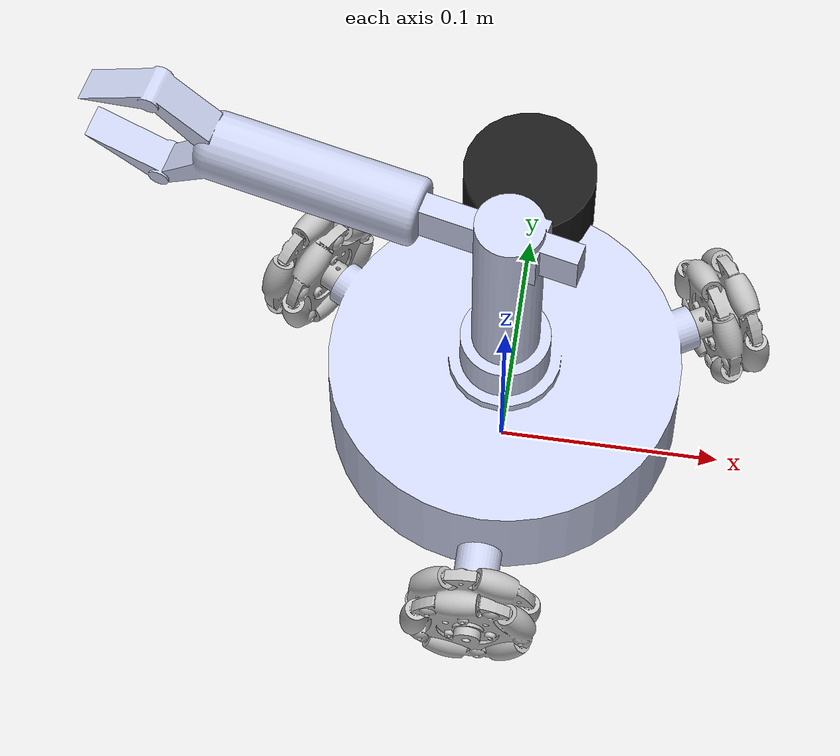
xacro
<?xml version="1.0"?>
<robot name="my_robot" xmlns:xacro="http://www.ros.org/wiki/xacro">

  <material name="light_blue"><color rgba="0.792 0.819 0.933 1" /></material>
  <material name="gray"><color rgba="0.752 0.752 0.752 1" /></material>
  <material name="black"><color rgba="0.1 0.1 0.1 1" /></material>
  <material name="red"><color rgba="1.0 0.0 0.0 1.0" /></material>

  <xacro:property name="dist_center" value="0.10777" />
  <xacro:property name="wheel_z_offset" value="-0.01" />
  <xacro:property name="PI" value="3.1415926535897931" />

  <xacro:macro name="omni_wheel" params="prefix x y yaw">
    <link name="wheel_${prefix}_link">
      <inertial>
        <origin xyz="2.06E-06 -1.37E-06 -0.00012" rpy="0 0 0" />
        <mass value="0.03769" />
        <inertia ixx="3.09E-06" ixy="0" ixz="0" iyy="3.09E-06" iyz="0" izz="5.34E-06" />
      </inertial>
      <visual>
        <origin xyz="0 0 0" rpy="0 0 0" />
        <geometry><mesh filename="package://my_robot_description/meshes/wheel_1.STL" /></geometry>
        <material name="gray" />
      </visual>
      <collision>
        <origin xyz="0 0 0" rpy="0 0 0" />
        <geometry><mesh filename="package://my_robot_description/meshes/wheel_1.STL" /></geometry>
      </collision>
    </link>
    <joint name="w${prefix}_joint" type="continuous">
      <parent link="base_link" />
      <child link="wheel_${prefix}_link" />
      <origin xyz="${x} ${y} ${wheel_z_offset}" rpy="${PI/2} 0 ${yaw}" />
      <axis xyz="0 0 1" />
    </joint>
  </xacro:macro>

  <link name="base_footprint"/>
  <joint name="base_joint" type="fixed">
    <parent link="base_footprint"/>
    <child link="base_link"/>
    <origin xyz="0 0 0.05" rpy="0 0 0"/>
  </joint>

  <link name="base_link">
    <inertial>
      <origin xyz="8.12E-10 0.00063 -0.00024" rpy="0 0 0" />
      <mass value="1.603" />
      <inertia ixx="0.00524" ixy="0" ixz="0" iyy="0.00524" iyz="0" izz="0.00982" />
    </inertial>
    <visual>
      <geometry><mesh filename="package://my_robot_description/meshes/base_link.STL" /></geometry>
      <material name="light_blue" />
    </visual>
    <collision>
      <geometry><mesh filename="package://my_robot_description/meshes/base_link.STL" /></geometry>
    </collision>
  </link>

  <xacro:omni_wheel prefix="1" x="0" y="-${dist_center}" yaw="0" />
  <xacro:omni_wheel prefix="2" x="${dist_center * cos(PI/6)}" y="${dist_center * sin(PI/6)}" yaw="${2*PI/3}" />
  <xacro:omni_wheel prefix="3" x="-${dist_center * cos(PI/6)}" y="${dist_center * sin(PI/6)}" yaw="-${2*PI/3}" />

  <link name="link_1">
    <inertial>
      <origin xyz="6.59E-05 -1.48E-05 0.075" rpy="0 0 0" />
      <mass value="0.101" />
      <inertia ixx="0.00014" ixy="0" ixz="0" iyy="0.00014" iyz="0" izz="1.36E-05" />
    </inertial>
    <visual>
      <geometry><mesh filename="package://my_robot_description/meshes/link_1.STL" /></geometry>
      <material name="light_blue" />
    </visual>
    <collision>
      <geometry><mesh filename="package://my_robot_description/meshes/link_1.STL" /></geometry>
    </collision>
  </link>
  <joint name="l1" type="revolute">
    <origin xyz="0 0 0" rpy="0 0 0" />
    <parent link="base_link" />
    <child link="link_1" />
    <axis xyz="0 0 -1" />
    <limit lower="-3.14" upper="3.14" effort="50" velocity="2" />
    <dynamics damping="0.1" friction="0.0" />
  </joint>

  <link name="link_2">
    <inertial>
      <origin xyz="0 0 0.101" rpy="0 0 0" />
      <mass value="0.096" />
      <inertia ixx="0.00023" ixy="0" ixz="0" iyy="0.00022" iyz="0" izz="1.59E-05" />
    </inertial>
    <visual>
      <geometry><mesh filename="package://my_robot_description/meshes/link_2.STL" /></geometry>
      <material name="light_blue" />
    </visual>
    <collision>
      <geometry><mesh filename="package://my_robot_description/meshes/link_2.STL" /></geometry>
    </collision>
  </link>
<joint name="l2" type="prismatic">
    <origin xyz="0 0 0.135" rpy="${PI/2} 0 -1.79" />
    <parent link="link_1" />
    <child link="link_2" />
    <axis xyz="0 0 -1" />
    <limit lower="-0.025" upper="0.025" effort="50" velocity="1" />
    <dynamics damping="0.1" friction="0.0" />
  </joint>

  <link name="imu_link"/>
  <joint name="imu_joint" type="fixed">
    <parent link="base_link"/>
    <child link="imu_link"/>
    <origin xyz="0 0 0" rpy="0 0 0"/>
  </joint>

  <gazebo reference="imu_link">
    <sensor name="imu_sensor" type="imu">
      <always_on>true</always_on>
      <update_rate>100</update_rate>
      <plugin name="imu_plugin" filename="libgazebo_ros_imu_sensor.so">
        <ros><remapping>~/out:=imu</remapping></ros>
        <initial_orientation_as_reference>false</initial_orientation_as_reference>
      </plugin>
    </sensor>
  </gazebo>

  <link name="lidar_link">
    <visual>
      <geometry><cylinder radius="0.03" length="0.04"/></geometry>
      <material name="black"/>
    </visual>
  </link>
  <joint name="lidar_joint" type="fixed">
    <parent link="base_link"/>
    <child link="lidar_link"/>
    <origin xyz="0.0 0.08 0.035" rpy="0 0 0"/>
  </joint>

  <gazebo reference="lidar_link">
    <material>Gazebo/Black</material>
    <sensor name="lidar" type="ray">
      <always_on>true</always_on>
      <visualize>true</visualize> <update_rate>10</update_rate>
      <ray>
        <scan>
          <horizontal>
            <samples>360</samples>
            <resolution>1</resolution>
            <min_angle>-3.14159</min_angle>
            <max_angle>3.14159</max_angle>
          </horizontal>
        </scan>
        <range>
          <min>0.15</min>
          <max>12.0</max>
          <resolution>0.015</resolution>
        </range>
      </ray>
      <plugin name="scan" filename="libgazebo_ros_ray_sensor.so">
        <ros><remapping>~/out:=scan</remapping></ros>
        <output_type>sensor_msgs/LaserScan</output_type>
        <frame_name>lidar_link</frame_name>
      </plugin>
    </sensor>
  </gazebo>

  <link name="camera_link">
    <visual>
      <geometry><box size="0.02 0.05 0.03"/></geometry>
      <material name="red"/>
    </visual>
  </link>

  <joint name="camera_joint" type="fixed">
    <parent link="base_link"/>
    <child link="camera_link"/>
    <origin xyz="0.0 0.1 0.0" rpy="0 0 ${PI/2}"/>
  </joint>

  <gazebo reference="camera_link">
    <material>Gazebo/Black</material>
    <sensor type="camera" name="camera_sensor">
      <update_rate>30.0</update_rate>
      <camera name="head">
        <horizontal_fov>1.3962634</horizontal_fov>
        <image>
          <width>800</width>
          <height>800</height>
          <format>R8G8B8</format>
        </image>
        <clip>
          <near>0.02</near>
          <far>300</far>
        </clip>
      </camera>
      <plugin name="camera_controller" filename="libgazebo_ros_camera.so">
        <alwaysOn>true</alwaysOn>
        <updateRate>0.0</updateRate>
        <cameraName>camera</cameraName>
        <imageTopicName>image_raw</imageTopicName>
        <cameraInfoTopicName>camera_info</cameraInfoTopicName>
        <frameName>camera_link</frameName>
      </plugin>
    </sensor>
  </gazebo>

  <gazebo>
    <plugin name="omni_steering" filename="libgazebo_ros_planar_move.so">
      <ros>
        <remapping>cmd_vel:=cmd_vel</remapping>
        <remapping>odom:=odom</remapping>
      </ros>
      <update_rate>50.0</update_rate>
      <publish_rate>50.0</publish_rate>

      <publish_odom>true</publish_odom>
      <publish_odom_tf>true</publish_odom_tf>

      <odometry_frame>odom</odometry_frame>
      <robot_base_frame>base_footprint</robot_base_frame>

      <covariance_x>0.0001</covariance_x>
      <covariance_y>0.0001</covariance_y>
      <covariance_yaw>0.0001</covariance_yaw>
    </plugin>
  </gazebo>
<ros2_control name="GazeboSystem" type="system">
    <hardware>
      <plugin>gazebo_ros2_control/GazeboSystem</plugin>
    </hardware>

    <joint name="l1">
      <command_interface name="position"/>
      <state_interface name="position"/>
      <state_interface name="velocity"/>
    </joint>

    <joint name="l2">
      <command_interface name="position"/>
      <state_interface name="position"/>
      <state_interface name="velocity"/>
    </joint>
  </ros2_control>
<!-- Transmissions for ROS 2 Control -->
  <transmission name="l1_transmission">
    <type>transmission_interface/SimpleTransmission</type>
    <joint name="l1">
      <hardwareInterface>hardware_interface/PositionCommandInterface</hardwareInterface>
    </joint>
    <actuator name="l1_motor">
      <hardwareInterface>hardware_interface/PositionCommandInterface</hardwareInterface>
      <mechanicalReduction>1</mechanicalReduction>
    </actuator>
  </transmission>

  <transmission name="l2_transmission">
    <type>transmission_interface/SimpleTransmission</type>
    <joint name="l2">
      <hardwareInterface>hardware_interface/PositionCommandInterface</hardwareInterface>
    </joint>
    <actuator name="l2_motor">
      <hardwareInterface>hardware_interface/PositionCommandInterface</hardwareInterface>
      <mechanicalReduction>1</mechanicalReduction>
    </actuator>
  </transmission>

  <gazebo>
    <plugin name="gazebo_ros2_control" filename="libgazebo_ros2_control.so">
      <parameters>$(find my_robot_description)/config/controllers.yaml</parameters>
    </plugin>
  </gazebo>
</robot>
